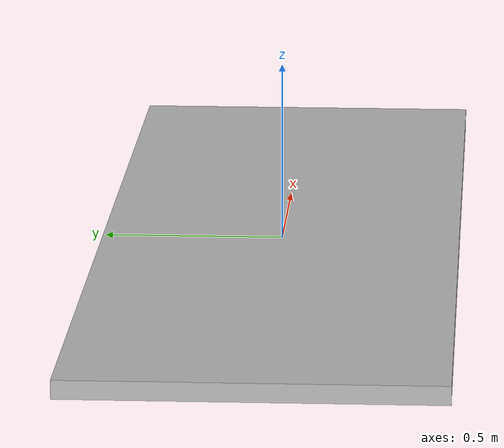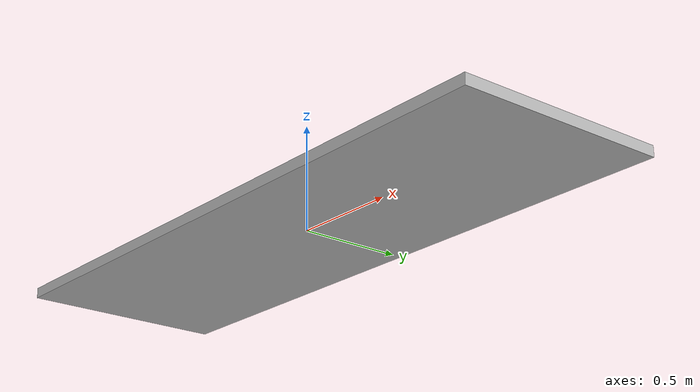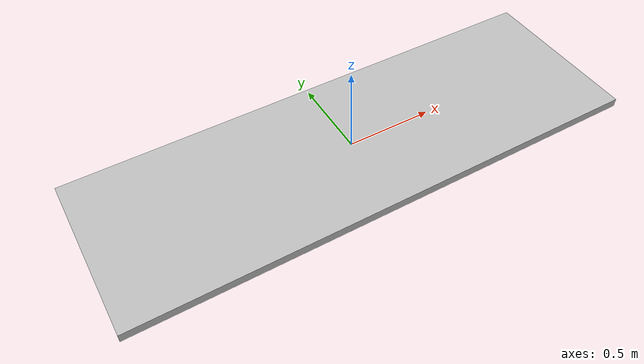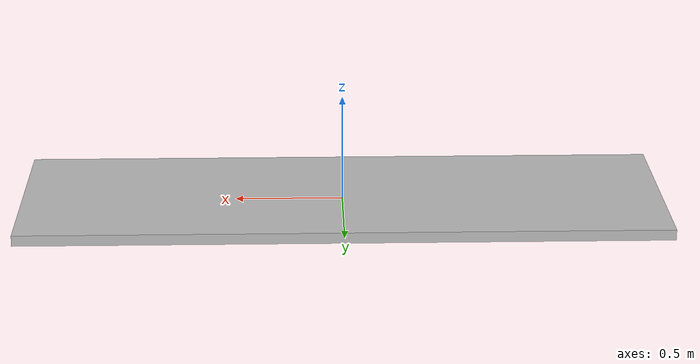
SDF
<?xml version='1.0'?>
<sdf version='1.6'>
  <model name="straight_300_o_25">
      <static>true</static>
      <link name='link'>
        <collision name='collision'>
          <geometry>
         <box>
            <size>3 1 0.05</size>
          </box>
          </geometry>
          <surface>
            <friction>
              <ode>
                <mu>100</mu>
                <mu2>50</mu2>
              </ode>
            </friction>
          </surface>
        </collision>
        <visual name='visual'>
          <cast_shadows>0</cast_shadows>
          <geometry>
         <box>
            <size>3 1 0.05</size>
          </box>
          </geometry>
          <material>
            <script>
              <uri>model://straight_300_o_25/materials/scripts</uri>
              <uri>model://straight_300_o_25/materials/textures/</uri>
              <name>straight_300_o_25/Image</name>
            </script>
          </material>
        </visual>
      </link>
  </model>
</sdf>
